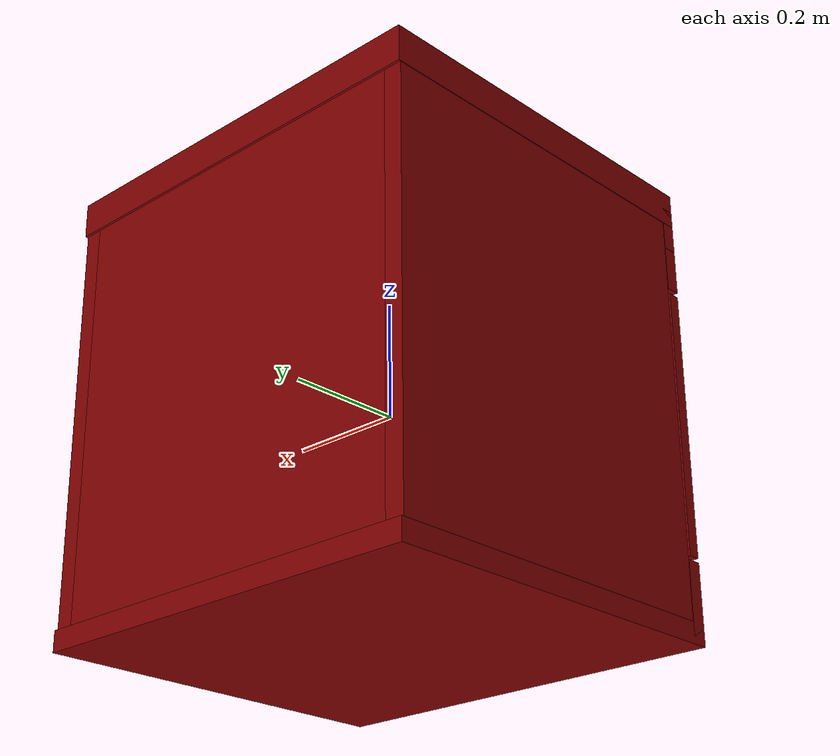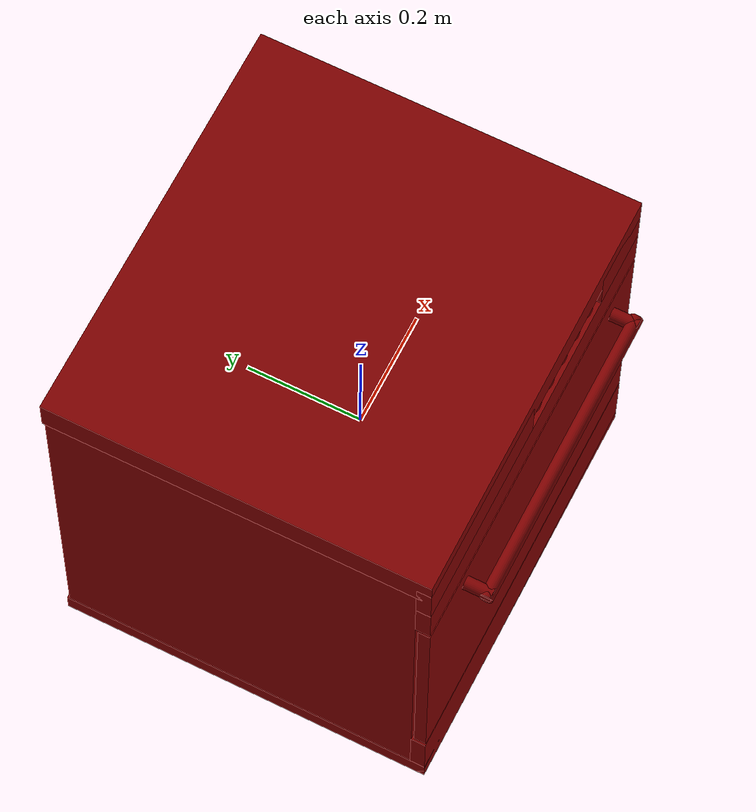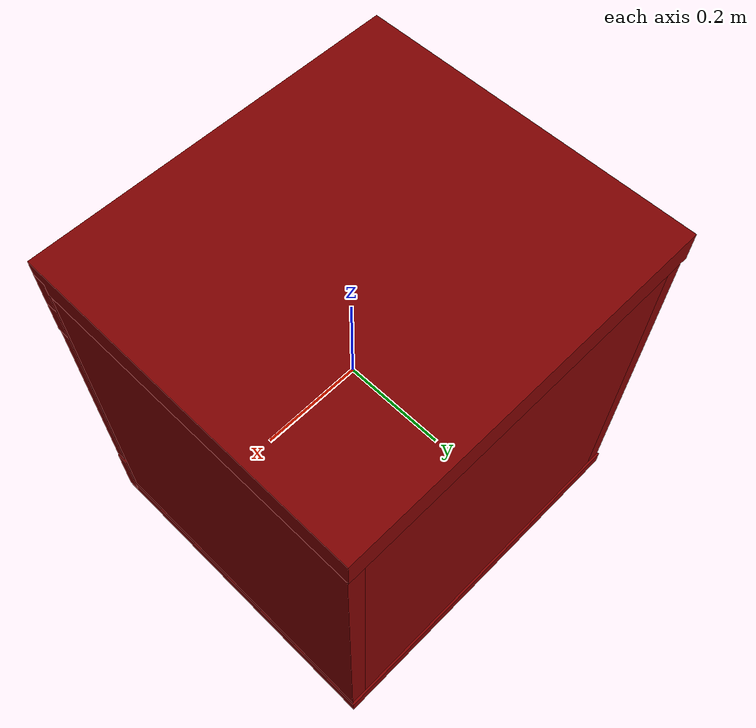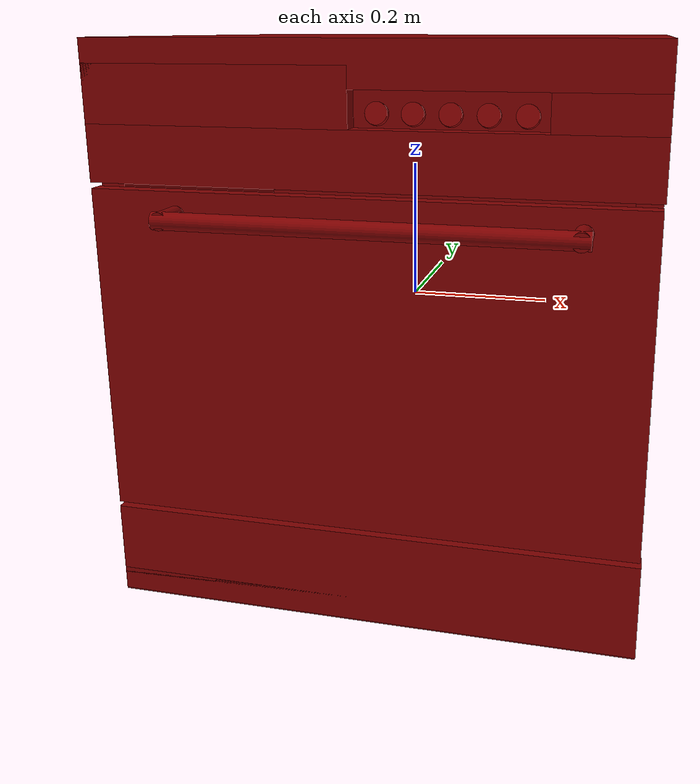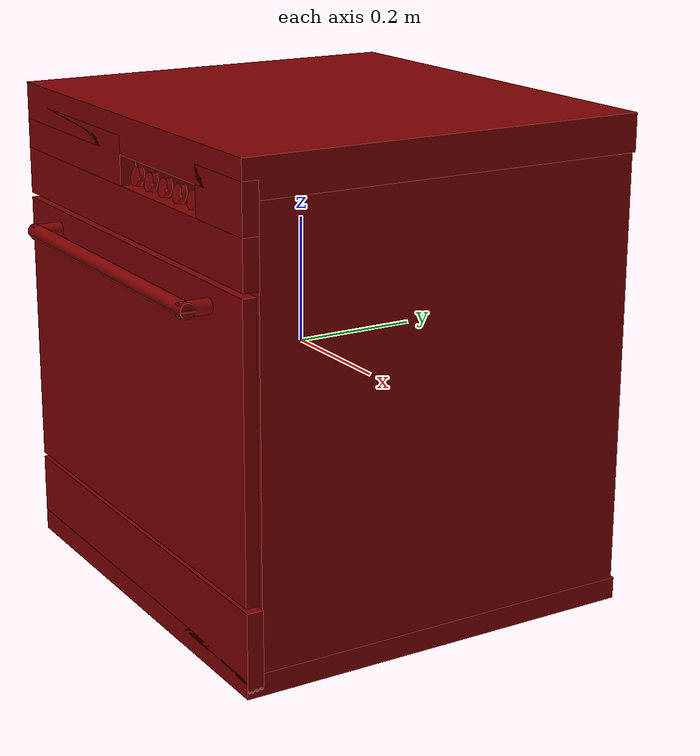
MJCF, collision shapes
<mujoco model="model">
  <compiler angle="radian"/>
  <asset>
    <mesh file="visuals/Body001.obj" name="Body001_vis"/>
    <mesh file="visuals/Button001.obj" name="Button001_vis"/>
    <mesh file="visuals/Button002.obj" name="Button002_vis"/>
    <mesh file="visuals/Button003.obj" name="Button003_vis"/>
    <mesh file="visuals/Button004.obj" name="Button004_vis"/>
    <mesh file="visuals/Button005.obj" name="Button005_vis"/>
    <mesh file="visuals/Container001.obj" name="Container001_vis"/>
    <mesh file="visuals/Container002.obj" name="Container002_vis"/>
    <mesh file="visuals/Door001.obj" name="Door001_vis"/>
    <mesh file="visuals/Handle001.obj" name="Handle001_vis"/>
    <texture file="visuals/T_BC001.png" name="Body001_material" type="2d"/>
    <material name="Body001_material" rgba="1 1 1 1.0" texture="Body001_material" shininess="0.141421377658844" specular="0.3103448502657381"/>
    <texture file="visuals/T_BC001.png" name="Button001_material" type="2d"/>
    <material name="Button001_material" rgba="1 1 1 1.0" texture="Button001_material" shininess="0.141421377658844" specular="0.3103448502657381"/>
    <texture file="visuals/T_BC001.png" name="Button002_material" type="2d"/>
    <material name="Button002_material" rgba="1 1 1 1.0" texture="Button002_material" shininess="0.141421377658844" specular="0.3103448502657381"/>
    <texture file="visuals/T_BC001.png" name="Button003_material" type="2d"/>
    <material name="Button003_material" rgba="1 1 1 1.0" texture="Button003_material" shininess="0.141421377658844" specular="0.3103448502657381"/>
    <texture file="visuals/T_BC001.png" name="Button004_material" type="2d"/>
    <material name="Button004_material" rgba="1 1 1 1.0" texture="Button004_material" shininess="0.141421377658844" specular="0.3103448502657381"/>
    <texture file="visuals/T_BC001.png" name="Button005_material" type="2d"/>
    <material name="Button005_material" rgba="1 1 1 1.0" texture="Button005_material" shininess="0.141421377658844" specular="0.3103448502657381"/>
    <texture file="visuals/T_BC001.png" name="Container001_material" type="2d"/>
    <material name="Container001_material" rgba="1 1 1 1.0" texture="Container001_material" shininess="0.141421377658844" specular="0.3103448502657381"/>
    <texture file="visuals/T_BC001.png" name="Container002_material" type="2d"/>
    <material name="Container002_material" rgba="1 1 1 1.0" texture="Container002_material" shininess="0.141421377658844" specular="0.3103448502657381"/>
    <texture file="visuals/T_BC001.png" name="Door001_material" type="2d"/>
    <material name="Door001_material" rgba="1 1 1 1.0" texture="Door001_material" shininess="0.141421377658844" specular="0.3103448502657381"/>
    <texture file="visuals/T_BC001.png" name="Handle001_material" type="2d"/>
    <material name="Handle001_material" rgba="1 1 1 1.0" texture="Handle001_material" shininess="0.141421377658844" specular="0.3103448502657381"/>
  </asset>
  <default>
    <default class="visual">
      <geom conaffinity="0" contype="0" group="1" type="mesh"/>
    </default>
    <default class="collision">
      <geom group="0" rgba="0.5 0 0 0.5"/>
    </default>
    <default class="spawn">
      <geom group="0" rgba="1 1 1 0.5" contype="0" conaffinity="0"/>
      <site group="0" rgba="1 1 1 0.5"/>
    </default>
    <default class="region">
      <geom group="1" conaffinity="0" contype="0" rgba="0 1 0 0"/>
    </default>
  </default>
  <worldbody>
    <body>
      <body name="object">
        <geom mesh="Body001_vis" type="mesh" solimp="0.998 0.998 0.001" solref="0.001 1" density="100" friction="0.95 0.3 0.1" class="visual" material="Body001_material"/>
        <geom class="collision" type="box" pos="-0.34242260456085205 0.03992157429456711 -0.0016952218720689416" size="0.015890756621956825 0.3130354881286621 0.3836671710014343" quat="1.0 0.0 0.0 0.0"/>
        <geom class="collision" type="box" pos="0.3419400751590729 0.03992157429456711 -0.0016952218720689416" size="0.015890756621956825 0.3130354881286621 0.3836671710014343" quat="1.0 0.0 0.0 0.0"/>
        <geom class="collision" type="box" pos="0.0002401434030616656 -0.28557145595550537 -0.32039162516593933" size="0.35946124792099 0.01303135883063078 0.06497076153755188" quat="1.0 0.0 0.0 0.0"/>
        <geom class="collision" type="box" pos="0.00024013736401684582 0.02930086851119995 0.35612377524375916" size="0.35946124792099 0.327903687953949 0.029452888295054436" quat="1.0 0.0 0.0 0.0"/>
        <geom class="collision" type="box" pos="0.00024013736401684582 0.02930086851119995 -0.3696107566356659" size="0.35946124792099 0.327903687953949 0.01732015423476696" quat="1.0 0.0 0.0 0.0"/>
        <geom class="collision" type="box" pos="0.0009469520300626755 0.2985987663269043 -0.0016952218720689416" size="0.3280077874660492 0.05435829237103462 0.3836671710014343" quat="1.0 0.0 0.0 0.0"/>
        <geom class="collision" type="box" pos="0.00024013736401684582 -0.28592878580093384 0.24247658252716064" size="0.35946124792099 0.012674039229750633 0.03748852387070656" quat="1.0 0.0 0.0 0.0"/>
        <geom class="collision" type="box" pos="-0.1858847737312317 -0.28592878580093384 0.31704771518707275" size="0.17333632707595825 0.012674039229750633 0.03748852387070656" quat="1.0 0.0 0.0 0.0"/>
        <geom class="collision" type="box" pos="0.29354050755500793 -0.28592878580093384 0.31704771518707275" size="0.0662284567952156 0.012674039229750633 0.03748852387070656" quat="1.0 0.0 0.0 0.0"/>
        <body name="Button001">
          <joint axis="0.0 0.9788382649421692 -0.2046353816986084" pos="0.020142778754234314 -0.28547751903533936 0.2981595993041992" limited="true" name="Button001_joint" range="0.0 0.002" type="slide" damping="1" frictionloss="1" armature=".01" stiffness="0.05" springref="-0.22"/>
          <geom mesh="Button001_vis" type="mesh" solimp="0.998 0.998 0.001" solref="0.001 1" density="100" friction="0.95 0.3 0.1" class="visual" material="Button001_material"/>
          <geom class="collision" type="cylinder" pos="0.02045087330043316 -0.2862221896648407 0.2983749210834503" size="0.013923700898885727 0.004214920569211245" quat="0.7847888469696045 0.619763195514679 0.0 0.0"/>
        </body>
        <body name="Button002">
          <joint axis="0.0 0.9788382649421692 -0.2046353816986084" pos="0.06530076265335083 -0.28547751903533936 0.2981595993041992" limited="true" name="Button002_joint" range="0.0 0.002" type="slide" damping="1" frictionloss="1" armature=".01" stiffness="0.05" springref="-0.22"/>
          <geom mesh="Button002_vis" type="mesh" solimp="0.998 0.998 0.001" solref="0.001 1" density="100" friction="0.95 0.3 0.1" class="visual" material="Button002_material"/>
          <geom class="collision" type="cylinder" pos="0.0651199221611023 -0.2862221896648407 0.2983749210834503" size="0.013923700898885727 0.004214920569211245" quat="0.7847888469696045 0.619763195514679 0.0 0.0"/>
        </body>
        <body name="Button003">
          <joint axis="0.0 0.9788382649421692 -0.2046353816986084" pos="0.11045874655246735 -0.28547751903533936 0.2981595993041992" limited="true" name="Button003_joint" range="0.0 0.002" type="slide" damping="1" frictionloss="1" armature=".01" stiffness="0.05" springref="-0.22"/>
          <geom mesh="Button003_vis" type="mesh" solimp="0.998 0.998 0.001" solref="0.001 1" density="100" friction="0.95 0.3 0.1" class="visual" material="Button003_material"/>
          <geom class="collision" type="cylinder" pos="0.11024963855743408 -0.2862221896648407 0.2983749210834503" size="0.013923700898885727 0.004214920569211245" quat="0.7847888469696045 0.619763195514679 0.0 0.0"/>
        </body>
        <body name="Button004">
          <joint axis="0.0 0.9788382649421692 -0.2046353816986084" pos="0.15561673045158386 -0.28547751903533936 0.2981595993041992" limited="true" name="Button004_joint" range="0.0 0.002" type="slide" damping="1" frictionloss="1" armature=".01" stiffness="0.05" springref="-0.22"/>
          <geom mesh="Button004_vis" type="mesh" solimp="0.998 0.998 0.001" solref="0.001 1" density="100" friction="0.95 0.3 0.1" class="visual" material="Button004_material"/>
          <geom class="collision" type="cylinder" pos="0.155238538980484 -0.2862221896648407 0.2983749210834503" size="0.013923700898885727 0.004214920569211245" quat="0.7847888469696045 0.619763195514679 0.0 0.0"/>
        </body>
        <body name="Button005">
          <joint axis="0.0 0.9788382649421692 -0.2046353816986084" pos="0.20077472925186157 -0.28547751903533936 0.2981595993041992" limited="true" name="Button005_joint" range="0.0 0.002" type="slide" damping="1" frictionloss="1" armature=".01" stiffness="0.05" springref="-0.22"/>
          <geom mesh="Button005_vis" type="mesh" solimp="0.998 0.998 0.001" solref="0.001 1" density="100" friction="0.95 0.3 0.1" class="visual" material="Button005_material"/>
          <geom class="collision" type="cylinder" pos="0.2006508708000183 -0.2862221896648407 0.2983749210834503" size="0.013923700898885727 0.004214920569211245" quat="0.7847888469696045 0.619763195514679 0.0 0.0"/>
        </body>
        <body name="Container001">
          <joint axis="0.0 -1.0 0.0" pos="0.0003232210874557495 -0.00662752240896225 0.04906192794442177" limited="true" name="Container001_joint" range="0.0 0.3" type="slide" damping="1" frictionloss="1" armature=".01" stiffness="0.05"/>
          <geom mesh="Container001_vis" type="mesh" solimp="0.998 0.998 0.001" solref="0.001 1" density="100" friction="0.95 0.3 0.1" class="visual" material="Container001_material"/>
          <geom class="collision" type="box" pos="-0.3168705701828003 -0.013223190791904926 0.05192508175969124" size="0.006833964958786964 0.2422594130039215 0.031281061470508575" quat="1.0 0.0 0.0 0.0"/>
          <geom class="collision" type="box" pos="0.316445916891098 -0.013223190791904926 0.05192508175969124" size="0.006833964958786964 0.2422594130039215 0.031281061470508575" quat="1.0 0.0 0.0 0.0"/>
          <geom class="collision" type="box" pos="-0.002845805138349533 0.23969560861587524 0.05192508175969124" size="0.30229490995407104 0.01020436454564333 0.031281061470508575" quat="1.0 0.0 0.0 0.0"/>
          <geom class="collision" type="box" pos="-0.002845805138349533 -0.25097039341926575 0.05192508175969124" size="0.30229490995407104 0.01020436454564333 0.031281061470508575" quat="1.0 0.0 0.0 0.0"/>
          <geom class="collision" type="box" pos="-0.002845805138349533 -0.0016755461692810059 0.01134611014276743" size="0.30229490995407104 0.2400183379650116 0.00728022214025259" quat="1.0 0.0 0.0 0.0"/>
        </body>
        <body name="Container002">
          <joint axis="0.0 -1.0 0.0" pos="0.0003232210874557495 -0.0066274553537368774 -0.14414241909980774" limited="true" name="Container002_joint" range="0.0 0.3" type="slide" damping="1" frictionloss="1" armature=".01" stiffness="0.05"/>
          <geom mesh="Container002_vis" type="mesh" solimp="0.998 0.998 0.001" solref="0.001 1" density="100" friction="0.95 0.3 0.1" class="visual" material="Container002_material"/>
          <geom class="collision" type="box" pos="-0.002845805138349533 -0.0016755461692810059 -0.18379808962345123" size="0.30229490995407104 0.2400183379650116 0.00728022214025259" quat="1.0 0.0 0.0 0.0"/>
          <geom class="collision" type="box" pos="-0.002845805138349533 -0.25097039341926575 -0.14321911334991455" size="0.30229490995407104 0.01020436454564333 0.031281061470508575" quat="1.0 0.0 0.0 0.0"/>
          <geom class="collision" type="box" pos="-0.002845805138349533 0.23969560861587524 -0.14321911334991455" size="0.30229490995407104 0.01020436454564333 0.031281061470508575" quat="1.0 0.0 0.0 0.0"/>
          <geom class="collision" type="box" pos="0.316445916891098 -0.013223190791904926 -0.14321911334991455" size="0.006833964958786964 0.2422594130039215 0.031281061470508575" quat="1.0 0.0 0.0 0.0"/>
          <geom class="collision" type="box" pos="-0.3168705701828003 -0.013223190791904926 -0.14321911334991455" size="0.006833964958786964 0.2422594130039215 0.031281061470508575" quat="1.0 0.0 0.0 0.0"/>
        </body>
        <body name="Door001">
          <joint axis="1.0 0.0 0.0" pos="0.0 -0.2855715751647949 -0.2556033730506897" limited="true" name="Door001_joint" range="0.0 0.5235987755982988" type="hinge" damping="1" frictionloss="1" armature=".01" stiffness="0.5" springref="-1"/>
          <geom mesh="Door001_vis" type="mesh" solimp="0.998 0.998 0.001" solref="0.001 1" density="100" friction="0.95 0.3 0.1" class="visual" material="Door001_material"/>
          <geom class="collision" type="box" pos="-0.00021404772996902466 -0.2882945239543915 -0.025368433445692062" size="0.35834184288978577 0.010505996644496918 0.22271299362182617" quat="1.0 0.0 0.0 0.0"/>
          <body name="Handle001">
            <geom mesh="Handle001_vis" type="mesh" solimp="0.998 0.998 0.001" solref="0.001 1" density="100" friction="0.95 0.3 0.1" class="visual" material="Handle001_material"/>
            <geom class="collision" type="cylinder" pos="0.27055901288986206 -0.32604485750198364 0.16784310340881348" size="0.01144466269761324 0.02347457967698574" quat="0.5 0.5 0.4999999701976776 -0.5"/>
            <geom class="collision" type="cylinder" pos="0.015101916156709194 -0.34027668833732605 0.16784310340881348" size="0.01144466269761324 0.2666928172111511" quat="0.7071068286895752 -0.0 0.7071067690849304 0.0"/>
            <geom class="collision" type="cylinder" pos="-0.24118997156620026 -0.32437318563461304 0.16813074052333832" size="0.01144466269761324 0.02347457967698574" quat="0.5 0.5 0.4999999701976776 -0.5"/>
          </body>
        </body>
        <geom class="region" name="reg_main" type="box" pos="7.450580596923828e-09 0.025871485471725464 0.0" size="0.3578523099422455 0.325520396232605 0.3851027190685272"/>
        <geom class="region" name="reg_int" type="box" pos="-0.0009533613920211792 -0.01253257691860199 -0.07067066431045532" size="0.31732894480228424 0.24305923283100128 0.2703716456890106"/>
      </body>
    </body>
  </worldbody>
  <actuator>
    <motor name="Button001_joint_actuator" joint="Button001_joint" gear="0.5"/>
    <motor name="Button002_joint_actuator" joint="Button002_joint" gear="0.5"/>
    <motor name="Button003_joint_actuator" joint="Button003_joint" gear="0.5"/>
    <motor name="Button004_joint_actuator" joint="Button004_joint" gear="0.5"/>
    <motor name="Button005_joint_actuator" joint="Button005_joint" gear="0.5"/>
    <motor name="Container001_joint_actuator" joint="Container001_joint" gear="10"/>
    <motor name="Container002_joint_actuator" joint="Container002_joint" gear="10"/>
    <motor name="Door001_joint_actuator" joint="Door001_joint" gear="50"/>
  </actuator>
</mujoco>
